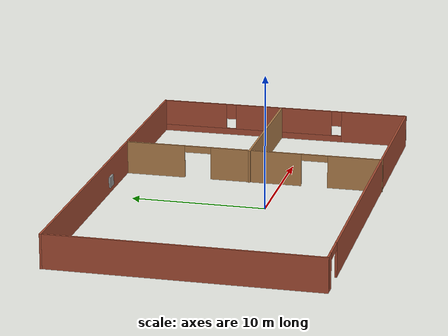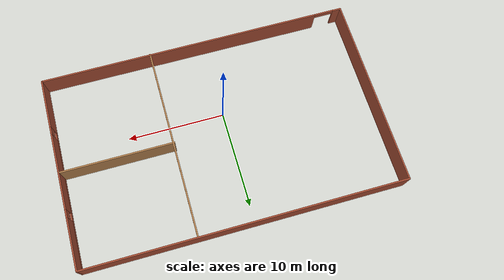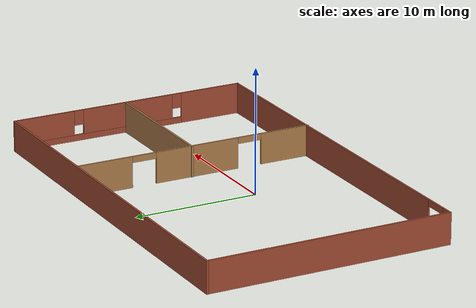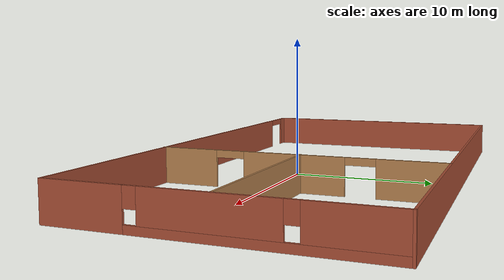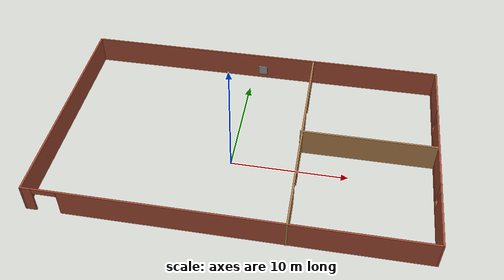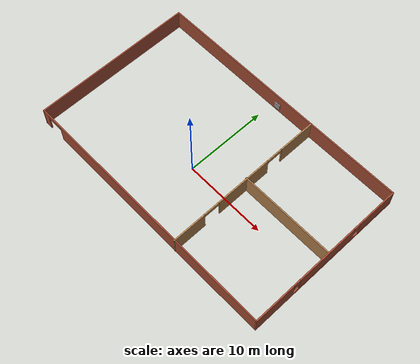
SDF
<?xml version='1.0'?>
<sdf version='1.6'>
  <model name='myBuilding'>
    <pose frame=''>0.94395 2.19858 0 0 -0 0</pose>
    <link name='Wall_14'>
      <pose frame=''>0 -9.7767 0 0 -0 0</pose>
      <visual name='Wall_14_Visual_0'>
        <pose frame=''>-15.7746 0 1.25 0 -0 0</pose>
        <geometry>
          <box>
            <size>0.950826 0.15 2.5</size>
          </box>
        </geometry>
        <material>
          <script>
            <uri>file://media/materials/scripts/gazebo.material</uri>
            <name>Gazebo/Bricks</name>
          </script>
          <ambient>0.435294 0.796078 0.67451 1</ambient>
        </material>
        <meta>
          <layer>0</layer>
        </meta>
      </visual>
      <collision name='Wall_14_Collision_0'>
        <geometry>
          <box>
            <size>0.950826 0.15 2.5</size>
          </box>
        </geometry>
        <pose frame=''>-15.7746 0 1.25 0 -0 0</pose>
      </collision>
      <visual name='Wall_14_Visual_1'>
        <pose frame=''>1.47541 0 1.25 0 -0 0</pose>
        <geometry>
          <box>
            <size>29.5492 0.15 2.5</size>
          </box>
        </geometry>
        <material>
          <script>
            <uri>file://media/materials/scripts/gazebo.material</uri>
            <name>Gazebo/Bricks</name>
          </script>
          <ambient>0.435294 0.796078 0.67451 1</ambient>
        </material>
        <meta>
          <layer>0</layer>
        </meta>
      </visual>
      <collision name='Wall_14_Collision_1'>
        <geometry>
          <box>
            <size>29.5492 0.15 2.5</size>
          </box>
        </geometry>
        <pose frame=''>1.47541 0 1.25 0 -0 0</pose>
      </collision>
      <visual name='Wall_14_Visual_2'>
        <pose frame=''>-14.2992 0 2.25 0 -0 0</pose>
        <geometry>
          <box>
            <size>2 0.15 0.5</size>
          </box>
        </geometry>
        <material>
          <script>
            <uri>file://media/materials/scripts/gazebo.material</uri>
            <name>Gazebo/Bricks</name>
          </script>
          <ambient>0.435294 0.796078 0.67451 1</ambient>
        </material>
        <meta>
          <layer>0</layer>
        </meta>
      </visual>
      <collision name='Wall_14_Collision_2'>
        <geometry>
          <box>
            <size>2 0.15 0.5</size>
          </box>
        </geometry>
        <pose frame=''>-14.2992 0 2.25 0 -0 0</pose>
      </collision>
    </link>
    <link name='Wall_15'>
      <pose frame=''>16.175 0.023299 0 0 -0 1.5708</pose>
      <visual name='Wall_15_Visual_0'>
        <pose frame=''>-7.27902 0 1.25 0 -0 0</pose>
        <geometry>
          <box>
            <size>5.19197 0.15 2.5</size>
          </box>
        </geometry>
        <material>
          <script>
            <uri>file://media/materials/scripts/gazebo.material</uri>
            <name>Gazebo/Bricks</name>
          </script>
          <ambient>1 1 1 1</ambient>
        </material>
        <meta>
          <layer>0</layer>
        </meta>
      </visual>
      <collision name='Wall_15_Collision_0'>
        <geometry>
          <box>
            <size>5.19197 0.15 2.5</size>
          </box>
        </geometry>
        <pose frame=''>-7.27902 0 1.25 0 -0 0</pose>
      </collision>
      <visual name='Wall_15_Visual_1'>
        <pose frame=''>2.59599 0 0.25 0 -0 0</pose>
        <geometry>
          <box>
            <size>14.558 0.15 0.5</size>
          </box>
        </geometry>
        <material>
          <script>
            <uri>file://media/materials/scripts/gazebo.material</uri>
            <name>Gazebo/Bricks</name>
          </script>
          <ambient>1 1 1 1</ambient>
        </material>
        <meta>
          <layer>0</layer>
        </meta>
      </visual>
      <collision name='Wall_15_Collision_1'>
        <geometry>
          <box>
            <size>14.558 0.15 0.5</size>
          </box>
        </geometry>
        <pose frame=''>2.59599 0 0.25 0 -0 0</pose>
      </collision>
      <visual name='Wall_15_Visual_2'>
        <pose frame=''>0.021476 0 1.5 0 -0 0</pose>
        <geometry>
          <box>
            <size>7.80901 0.15 2</size>
          </box>
        </geometry>
        <material>
          <script>
            <uri>file://media/materials/scripts/gazebo.material</uri>
            <name>Gazebo/Bricks</name>
          </script>
          <ambient>1 1 1 1</ambient>
        </material>
        <meta>
          <layer>0</layer>
        </meta>
      </visual>
      <collision name='Wall_15_Collision_2'>
        <geometry>
          <box>
            <size>7.80901 0.15 2</size>
          </box>
        </geometry>
        <pose frame=''>0.021476 0 1.5 0 -0 0</pose>
      </collision>
      <visual name='Wall_15_Visual_3'>
        <pose frame=''>7.30049 0 1.5 0 -0 0</pose>
        <geometry>
          <box>
            <size>5.14902 0.15 2</size>
          </box>
        </geometry>
        <material>
          <script>
            <uri>file://media/materials/scripts/gazebo.material</uri>
            <name>Gazebo/Bricks</name>
          </script>
          <ambient>1 1 1 1</ambient>
        </material>
        <meta>
          <layer>0</layer>
        </meta>
      </visual>
      <collision name='Wall_15_Collision_3'>
        <geometry>
          <box>
            <size>5.14902 0.15 2</size>
          </box>
        </geometry>
        <pose frame=''>7.30049 0 1.5 0 -0 0</pose>
      </collision>
      <visual name='Wall_15_Visual_4'>
        <pose frame=''>-4.28303 0 1.9 0 -0 0</pose>
        <geometry>
          <box>
            <size>0.8 0.15 1.2</size>
          </box>
        </geometry>
        <material>
          <script>
            <uri>file://media/materials/scripts/gazebo.material</uri>
            <name>Gazebo/Bricks</name>
          </script>
          <ambient>1 1 1 1</ambient>
        </material>
        <meta>
          <layer>0</layer>
        </meta>
      </visual>
      <collision name='Wall_15_Collision_4'>
        <geometry>
          <box>
            <size>0.8 0.15 1.2</size>
          </box>
        </geometry>
        <pose frame=''>-4.28303 0 1.9 0 -0 0</pose>
      </collision>
      <visual name='Wall_15_Visual_5'>
        <pose frame=''>4.32598 0 1.9 0 -0 0</pose>
        <geometry>
          <box>
            <size>0.8 0.15 1.2</size>
          </box>
        </geometry>
        <material>
          <script>
            <uri>file://media/materials/scripts/gazebo.material</uri>
            <name>Gazebo/Bricks</name>
          </script>
          <ambient>1 1 1 1</ambient>
        </material>
        <meta>
          <layer>0</layer>
        </meta>
      </visual>
      <collision name='Wall_15_Collision_5'>
        <geometry>
          <box>
            <size>0.8 0.15 1.2</size>
          </box>
        </geometry>
        <pose frame=''>4.32598 0 1.9 0 -0 0</pose>
      </collision>
    </link>
    <link name='Wall_16'>
      <collision name='Wall_16_Collision'>
        <geometry>
          <box>
            <size>32.5 0.15 2.5</size>
          </box>
        </geometry>
        <pose frame=''>0 0 1.25 0 -0 0</pose>
      </collision>
      <visual name='Wall_16_Visual'>
        <pose frame=''>0 0 1.25 0 -0 0</pose>
        <geometry>
          <box>
            <size>32.5 0.15 2.5</size>
          </box>
        </geometry>
        <material>
          <script>
            <uri>file://media/materials/scripts/gazebo.material</uri>
            <name>Gazebo/Bricks</name>
          </script>
          <ambient>0.435294 0.796078 0.67451 1</ambient>
        </material>
        <meta>
          <layer>0</layer>
        </meta>
      </visual>
      <pose frame=''>0 9.8233 0 0 -0 3.14159</pose>
    </link>
    <link name='Wall_17'>
      <collision name='Wall_17_Collision'>
        <geometry>
          <box>
            <size>19.75 0.15 2.5</size>
          </box>
        </geometry>
        <pose frame=''>0 0 1.25 0 -0 0</pose>
      </collision>
      <visual name='Wall_17_Visual'>
        <pose frame=''>0 0 1.25 0 -0 0</pose>
        <geometry>
          <box>
            <size>19.75 0.15 2.5</size>
          </box>
        </geometry>
        <material>
          <script>
            <uri>file://media/materials/scripts/gazebo.material</uri>
            <name>Gazebo/Bricks</name>
          </script>
          <ambient>1 1 1 1</ambient>
        </material>
        <meta>
          <layer>0</layer>
        </meta>
      </visual>
      <pose frame=''>-16.175 0.023299 0 0 0 -1.5708</pose>
    </link>
    <link name='Wall_19'>
      <pose frame=''>4.79037 -0.023299 0 0 0 -1.5708</pose>
      <visual name='Wall_19_Visual_0'>
        <pose frame=''>-7.577 0 1.25 0 -0 0</pose>
        <geometry>
          <box>
            <size>4.596 0.15 2.5</size>
          </box>
        </geometry>
        <material>
          <script>
            <uri>file://media/materials/scripts/gazebo.material</uri>
            <name>Gazebo/Wood</name>
          </script>
          <ambient>1 1 1 1</ambient>
        </material>
        <meta>
          <layer>0</layer>
        </meta>
      </visual>
      <collision name='Wall_19_Collision_0'>
        <geometry>
          <box>
            <size>4.596 0.15 2.5</size>
          </box>
        </geometry>
        <pose frame=''>-7.577 0 1.25 0 -0 0</pose>
      </collision>
      <visual name='Wall_19_Visual_1'>
        <pose frame=''>0.212654 0 1.25 0 -0 0</pose>
        <geometry>
          <box>
            <size>6.98332 0.15 2.5</size>
          </box>
        </geometry>
        <material>
          <script>
            <uri>file://media/materials/scripts/gazebo.material</uri>
            <name>Gazebo/Wood</name>
          </script>
          <ambient>1 1 1 1</ambient>
        </material>
        <meta>
          <layer>0</layer>
        </meta>
      </visual>
      <collision name='Wall_19_Collision_1'>
        <geometry>
          <box>
            <size>6.98332 0.15 2.5</size>
          </box>
        </geometry>
        <pose frame=''>0.212654 0 1.25 0 -0 0</pose>
      </collision>
      <visual name='Wall_19_Visual_2'>
        <pose frame=''>7.78966 0 1.25 0 -0 0</pose>
        <geometry>
          <box>
            <size>4.17069 0.15 2.5</size>
          </box>
        </geometry>
        <material>
          <script>
            <uri>file://media/materials/scripts/gazebo.material</uri>
            <name>Gazebo/Wood</name>
          </script>
          <ambient>1 1 1 1</ambient>
        </material>
        <meta>
          <layer>0</layer>
        </meta>
      </visual>
      <collision name='Wall_19_Collision_2'>
        <geometry>
          <box>
            <size>4.17069 0.15 2.5</size>
          </box>
        </geometry>
        <pose frame=''>7.78966 0 1.25 0 -0 0</pose>
      </collision>
      <visual name='Wall_19_Visual_3'>
        <pose frame=''>-4.279 0 2.25 0 -0 0</pose>
        <geometry>
          <box>
            <size>2 0.15 0.5</size>
          </box>
        </geometry>
        <material>
          <script>
            <uri>file://media/materials/scripts/gazebo.material</uri>
            <name>Gazebo/Wood</name>
          </script>
          <ambient>1 1 1 1</ambient>
        </material>
        <meta>
          <layer>0</layer>
        </meta>
      </visual>
      <collision name='Wall_19_Collision_3'>
        <geometry>
          <box>
            <size>2 0.15 0.5</size>
          </box>
        </geometry>
        <pose frame=''>-4.279 0 2.25 0 -0 0</pose>
      </collision>
      <visual name='Wall_19_Visual_4'>
        <pose frame=''>4.70431 0 2.25 0 -0 0</pose>
        <geometry>
          <box>
            <size>2 0.15 0.5</size>
          </box>
        </geometry>
        <material>
          <script>
            <uri>file://media/materials/scripts/gazebo.material</uri>
            <name>Gazebo/Wood</name>
          </script>
          <ambient>1 1 1 1</ambient>
        </material>
        <meta>
          <layer>0</layer>
        </meta>
      </visual>
      <collision name='Wall_19_Collision_4'>
        <geometry>
          <box>
            <size>2 0.15 0.5</size>
          </box>
        </geometry>
        <pose frame=''>4.70431 0 2.25 0 -0 0</pose>
      </collision>
    </link>
    <link name='Wall_21'>
      <collision name='Wall_21_Collision'>
        <geometry>
          <box>
            <size>11.5 0.15 2.5</size>
          </box>
        </geometry>
        <pose frame=''>0 0 1.25 0 -0 0</pose>
      </collision>
      <visual name='Wall_21_Visual'>
        <pose frame=''>0 0 1.25 0 -0 0</pose>
        <geometry>
          <box>
            <size>11.5 0.15 2.5</size>
          </box>
        </geometry>
        <material>
          <script>
            <uri>file://media/materials/scripts/gazebo.material</uri>
            <name>Gazebo/Wood</name>
          </script>
          <ambient>0.996078 0.47451 0.0196078 1</ambient>
        </material>
        <meta>
          <layer>0</layer>
        </meta>
      </visual>
      <pose frame=''>10.3718 0.231928 0 0 -0 0</pose>
    </link>
    <link name='Window_0'>
      <collision name='Window_0_Collision'>
        <geometry>
          <box>
            <size>0.8 0.17 0.8</size>
          </box>
        </geometry>
        <pose frame=''>0 0 0.4 0 -0 0</pose>
      </collision>
      <visual name='Window_0_Visual'>
        <pose frame=''>0 0 0.4 0 -0 0</pose>
        <geometry>
          <box>
            <size>0.8 0.17 0.8</size>
          </box>
        </geometry>
        <material>
          <script>
            <uri>file://media/materials/scripts/gazebo.material</uri>
            <name>Gazebo/Grey</name>
          </script>
        </material>
      </visual>
      <pose frame=''>0.017986 9.68313 0.5 0 -0 0</pose>
    </link>
    <static>1</static>
  </model>
</sdf>
